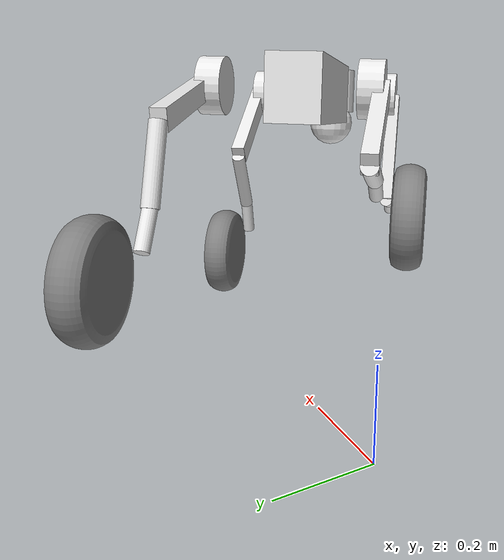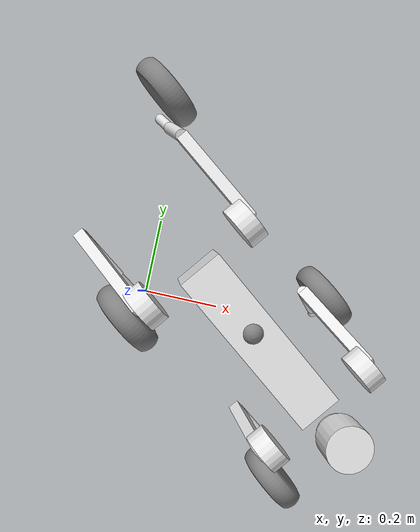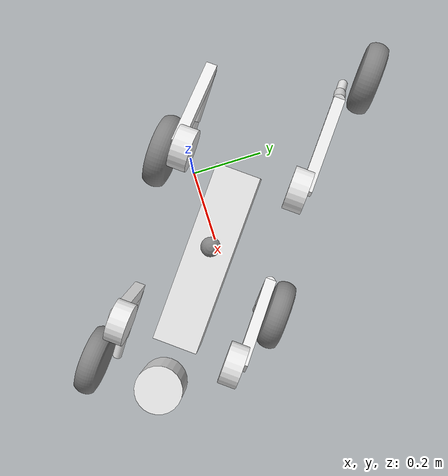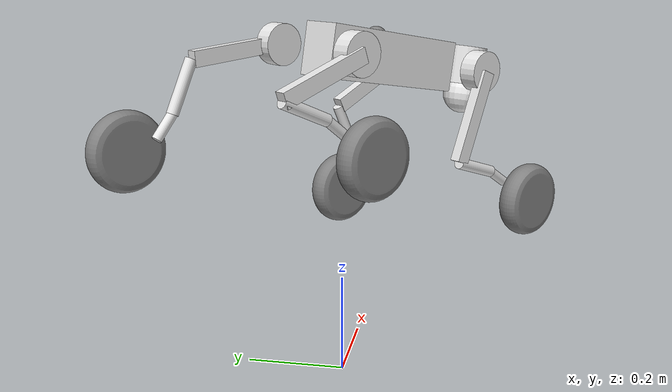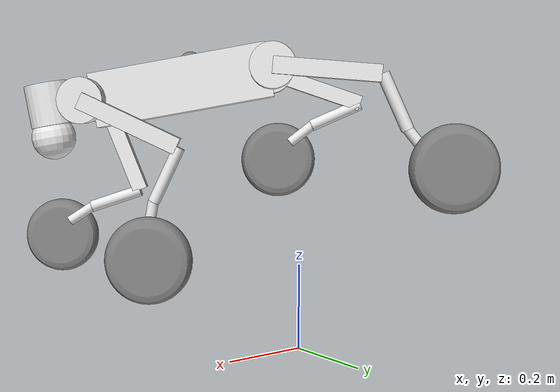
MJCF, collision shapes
<mujoco>
  <compiler angle="radian" assetdir="assets"/>
  <option timestep="0.02">
    <flag/>
  </option>
  <statistic/>
  <asset>
    <texture type="2d" colorspace="linear" name="noise_normal" file="noise_normal.png"/>
    <material name="black_plastic" rgba="0.0507087 0.0507087 0.0507087 1.0" reflectance="0.5" roughness="0.4" metallic="0.0" texuniform="true" texrepeat="12.0 12.0">
      <layer texture="noise_normal" role="normal"/>
    </material>
    <material name="black_metal" rgba="0.220085 0.220813 0.2209164 1.0" reflectance="0.5" roughness="0.5" metallic="1.0" texuniform="true" texrepeat="16.0 16.0">
      <layer texture="noise_normal" role="normal"/>
    </material>
    <material name="aluminum_rough" rgba="0.9621279 0.9653596 0.9658199 1.0" reflectance="0.5" roughness="0.54" metallic="1.0" texuniform="true" texrepeat="12.0 12.0">
      <layer texture="noise_normal" role="normal"/>
    </material>
    <material name="gray_plastic" rgba="0.5969514 0.5983734 0.6262097 1.0" reflectance="0.5" roughness="0.4" metallic="0.0"/>
    <material name="black_rubber" rgba="0.0507087 0.0507087 0.0507087 1.0" reflectance="0.5" roughness="0.7" metallic="0.0" texuniform="true" texrepeat="16.0 16.0">
      <layer texture="noise_normal" role="normal"/>
    </material>
    <material name="template" rgba="0.9063318 0.9063318 0.9063318 1.0" reflectance="0.5" roughness="0.5" metallic="0.0"/>
    <mesh name="base_0" file="base_0.obj"/>
    <mesh name="base_1" file="base_1.obj"/>
    <mesh name="base_2" file="base_2.obj"/>
    <mesh name="base_3" file="base_3.obj"/>
    <mesh name="base_4" file="base_4.obj"/>
    <mesh name="hip_0" file="hip_0.obj"/>
    <mesh name="hip_1" file="hip_1.obj"/>
    <mesh name="thigh_0" file="thigh_0.obj"/>
    <mesh name="thigh_1" file="thigh_1.obj"/>
    <mesh name="thigh_mirror_0" file="thigh_mirror_0.obj"/>
    <mesh name="thigh_mirror_1" file="thigh_mirror_1.obj"/>
    <mesh name="wheel" file="wheel.obj"/>
    <mesh name="calf" file="calf.obj"/>
    <mesh name="calf_mirror" file="calf_mirror.obj"/>
    <mesh name="wheel_001" file="wheel_001.obj"/>
    <mesh name="wheel_convex" file="wheel_convex.stl"/>
  </asset>
  <worldbody>
    <body name="base" pos="0.2998938 -0.0344606 0.6118738" quat="0.9419456 0.0269808 0.0834898 -0.3240989">
      <inertial pos="0.021112 0.0 -0.005366" quat="0.000544 -0.7134351 0.0017372 -0.700719" mass="6.921" diaginertia="0.107027 0.0980771 0.0244531"/>
      <joint name="JNT_Joint" pos="0.0 0.0 0.0" axis="-0.0 1.0 1e-07" type="free" armature="0.01" damping="0.5" frictionloss="0.2"/>
      <geom name="base1" pos="0.0 0.0 0.0" quat="1.0 -0.0 0.0 -0.0" type="box" size="0.1881 0.04675 0.057" material="template" group="3" condim="1" conaffinity="2" friction="0.6 0.005 0.0001" margin="0.001"/>
      <geom name="base2" pos="0.285 0.0 0.01" quat="1.0 -0.0 0.0 -0.0" type="cylinder" size="0.05 0.045" material="template" group="3" condim="1" conaffinity="2" friction="0.6 0.005 0.0001" margin="0.001"/>
      <geom name="base3" pos="0.293 0.0 -0.06" quat="1.0 -0.0 0.0 -0.0" type="sphere" size="0.047" material="template" group="3" condim="1" conaffinity="2" friction="0.6 0.005 0.0001" margin="0.001"/>
      <geom name="base_0" pos="0.0 0.0 0.0" quat="1.0 0.0 0.0 -0.0" type="mesh" mesh="base_0" material="black_plastic" group="2" condim="1" contype="0" conaffinity="0" friction="0.6 0.005 0.0001" margin="0.001"/>
      <geom name="base_1" pos="0.0 0.0 0.0" quat="1.0 0.0 0.0 -0.0" type="mesh" mesh="base_1" material="black_metal" group="2" condim="1" contype="0" conaffinity="0" friction="0.6 0.005 0.0001" margin="0.001"/>
      <geom name="base_2" pos="0.0 0.0 0.0" quat="1.0 0.0 0.0 -0.0" type="mesh" mesh="base_2" material="black_plastic" group="2" condim="1" contype="0" conaffinity="0" friction="0.6 0.005 0.0001" margin="0.001"/>
      <geom name="base_3" pos="0.0 0.0 0.0" quat="1.0 0.0 0.0 -0.0" type="mesh" mesh="base_3" material="aluminum_rough" group="2" condim="1" contype="0" conaffinity="0" friction="0.6 0.005 0.0001" margin="0.001"/>
      <geom name="base_4" pos="0.0 0.0 0.0" quat="1.0 0.0 0.0 -0.0" type="mesh" mesh="base_4" material="gray_plastic" group="2" condim="1" contype="0" conaffinity="0" friction="0.6 0.005 0.0001" margin="0.001"/>
      <site name="imu" pos="-0.02557 0.0 0.04232" quat="1.0 -0.0 0.0 -0.0" type="sphere" size="0.025"/>
      <body name="FL_hip" pos="0.1934001 0.0465 -1e-07" quat="0.9999973 -0.0023455 0.0 -0.0">
        <inertial pos="-0.0054 0.00194 -0.000105" quat="0.4970138 0.4992449 0.505462 0.498237" mass="0.678" diaginertia="0.000884 0.000596 0.00048"/>
        <joint name="FL_hip_joint" pos="0.0 0.0 0.0" axis="1.0 -2e-07 -1e-07" type="hinge" range="-1.0472 1.0472" armature="0.01" damping="0.5" frictionloss="0.2"/>
        <geom name="FL_hip_geom" pos="0.0 0.08 0.0" quat="0.7071068 0.7071068 0.0 -0.0" type="cylinder" size="0.046 0.02" material="template" group="3" condim="1" conaffinity="2" friction="0.6 0.005 0.0001" margin="0.001"/>
        <geom name="hip_0" pos="0.0 -0.0 0.0" quat="1.0 0.0 0.0 -0.0" type="mesh" mesh="hip_0" material="aluminum_rough" group="2" condim="1" contype="0" conaffinity="0" friction="0.6 0.005 0.0001" margin="0.001"/>
        <geom name="hip_1" pos="0.0 -0.0 0.0" quat="1.0 0.0 0.0 -0.0" type="mesh" mesh="hip_1" material="gray_plastic" group="2" condim="1" contype="0" conaffinity="0" friction="0.6 0.005 0.0001" margin="0.001"/>
        <body name="FL_thigh" pos="0.0 0.0954999 -2e-07" quat="0.8880953 0.0 0.4596595 0.0">
          <inertial pos="-0.00374 -0.0223 -0.0327" quat="0.8295329 0.0847635 -0.0200632 0.5516229" mass="1.152" diaginertia="0.0059497 0.0058415 0.0008788"/>
          <joint name="FL_thigh_joint" pos="0.0 0.0 0.0" axis="0.0 1.0 0.0" type="hinge" range="-1.5707999 3.4907" armature="0.01" damping="0.5" frictionloss="0.2"/>
          <geom name="FL_thigh_geom" pos="0.0 0.0 -0.1065" quat="0.7071068 -0.0 0.7071068 0.0" type="box" size="0.1065 0.01225 0.017" material="template" group="3" condim="1" conaffinity="2" friction="0.6 0.005 0.0001" margin="0.001"/>
          <geom name="thigh_0" pos="0.0 -1e-07 1e-07" quat="1.0 -0.0 0.0 -0.0" type="mesh" mesh="thigh_0" material="aluminum_rough" group="2" condim="1" contype="0" conaffinity="0" friction="0.6 0.005 0.0001" margin="0.001"/>
          <geom name="thigh_1" pos="0.0 -1e-07 1e-07" quat="1.0 -0.0 0.0 -0.0" type="mesh" mesh="thigh_1" material="gray_plastic" group="2" condim="1" contype="0" conaffinity="0" friction="0.6 0.005 0.0001" margin="0.001"/>
          <body name="FL_calf" pos="1e-07 1e-07 -0.213" quat="0.776633 0.0 -0.6299533 0.0">
            <inertial pos="0.006296 -0.0006221 -0.141417" quat="0.7106717 0.001541 -0.0045009 0.7035077" mass="0.241352" diaginertia="0.0014901 0.0014636 5.31e-05"/>
            <joint name="FL_calf_joint" pos="0.0 0.0 0.0" axis="0.0 1.0 1e-07" type="hinge" range="-2.7227001 -0.83776" armature="0.01" damping="0.1" frictionloss="0.2"/>
            <geom name="calf" pos="0.0 0.0 0.0" quat="1.0 -0.0 0.0 0.0" type="mesh" mesh="calf" material="aluminum_rough" group="2" condim="1" contype="0" conaffinity="0" friction="0.4 0.005 0.0001" margin="0.001"/>
            <geom name="GEO_Cylinder_002" pos="0.008 0.0 -0.06" quat="0.9944927 -0.0 -0.104807 -0.0" type="cylinder" size="0.012 0.06" material="template" group="3" condim="1" friction="0.4 0.005 0.0001" margin="0.001"/>
            <geom name="GEO_Cylinder_003" pos="0.02 0.0 -0.148" quat="0.9996875 -0.0 0.0249974 -0.0" type="cylinder" size="0.011 0.0325" material="template" group="3" condim="1" friction="0.4 0.005 0.0001" margin="0.001"/>
            <body name="FL_wheel_link" pos="0.0 0.0 -0.2264" quat="1.0 -0.0 0.0 0.0">
              <inertial pos="-0.0 0.04 -0.0" quat="0.6614189 0.248219 0.250051 0.6621079" mass="0.98" diaginertia="0.003 0.0016 0.0016"/>
              <joint name="FL_wheel_joint" pos="0.0 0.0 0.0" axis="0.0 1.0 1e-07" type="hinge" armature="0.01" damping="0.1" frictionloss="0.2"/>
              <geom name="wheel" pos="1e-07 1e-07 0.0" quat="1e-07 -1.0 0.0 -0.0" type="mesh" mesh="wheel" material="black_rubber" group="2" condim="1" contype="0" conaffinity="0" friction="0.4 0.005 0.0001" margin="0.001"/>
              <geom name="wheel_hub" pos="0.0 0.0 0.0" quat="0.0 -1.0 0.0 0.0" type="mesh" mesh="wheel_001" material="aluminum_rough" group="2" condim="1" contype="0" conaffinity="0" friction="0.4 0.005 0.0001" margin="0.001"/>
              <geom name="wheel_convex" pos="0.0 0.0 0.0" quat="0.0 -1.0 0.0 0.0" type="mesh" mesh="wheel_convex" group="3" condim="6" priority="1" friction="0.8 0.02 0.01" margin="0.001"/>
            </body>
          </body>
        </body>
      </body>
      <body name="FR_hip" pos="0.1934001 -0.0465 -0.0" quat="0.9999793 0.0064387 0.0 -0.0">
        <inertial pos="-0.0054 -0.00194 -0.000105" quat="0.4982368 0.5054619 0.4992449 0.4970139" mass="0.678" diaginertia="0.000884 0.000596 0.00048"/>
        <joint name="FR_hip_joint" pos="0.0 0.0 0.0" axis="1.0 -1e-07 -1e-07" type="hinge" range="-1.0472 1.0472" armature="0.01" damping="0.5" frictionloss="0.2"/>
        <geom name="FR_hip_geom" pos="0.0 -0.08 0.0" quat="0.7071066 0.7071069 -0.0 0.0" type="cylinder" size="0.046 0.02" material="template" group="3" condim="1" conaffinity="2" friction="0.6 0.005 0.0001" margin="0.001"/>
        <geom name="hip_0_001" pos="0.0 0.0 0.0" quat="4.63e-05 1.0 -0.0 0.0" type="mesh" mesh="hip_0" material="aluminum_rough" group="2" condim="1" contype="0" conaffinity="0" friction="0.6 0.005 0.0001" margin="0.001"/>
        <geom name="hip_1_001" pos="0.0 0.0 0.0" quat="4.63e-05 1.0 -0.0 0.0" type="mesh" mesh="hip_1" material="gray_plastic" group="2" condim="1" contype="0" conaffinity="0" friction="0.6 0.005 0.0001" margin="0.001"/>
        <body name="FR_thigh" pos="0.0 -0.0955001 3e-07" quat="0.9950206 0.0 0.0996701 -0.0">
          <inertial pos="-0.00374 0.0223 -0.0327" quat="0.551623 -0.0200632 0.0847635 0.8295329" mass="1.152" diaginertia="0.0059497 0.0058415 0.0008788"/>
          <joint name="FR_thigh_joint" pos="0.0 0.0 0.0" axis="-0.0 1.0 1e-07" type="hinge" range="-1.5707999 3.4907" armature="0.01" damping="0.5" frictionloss="0.2"/>
          <geom name="FR_thigh_geom" pos="0.0 0.0 -0.1065" quat="0.7071068 0.0 0.7071068 0.0" type="box" size="0.1065 0.01225 0.017" material="template" group="3" condim="1" conaffinity="2" friction="0.6 0.005 0.0001" margin="0.001"/>
          <geom name="thigh_mirror_0" pos="1e-07 -0.0 3e-07" quat="1.0 0.0 0.0 0.0" type="mesh" mesh="thigh_mirror_0" material="aluminum_rough" group="2" condim="1" contype="0" conaffinity="0" friction="0.6 0.005 0.0001" margin="0.001"/>
          <geom name="thigh_mirror_1" pos="1e-07 -0.0 3e-07" quat="1.0 0.0 0.0 0.0" type="mesh" mesh="thigh_mirror_1" material="gray_plastic" group="2" condim="1" contype="0" conaffinity="0" friction="0.6 0.005 0.0001" margin="0.001"/>
          <body name="FR_calf" pos="-1e-07 -1e-07 -0.2129999" quat="0.756881 0.0 -0.6535527 0.0">
            <inertial pos="0.006296 0.0006221 -0.141417" quat="0.7035078 -0.0045009 0.001541 0.7106717" mass="0.241352" diaginertia="0.0014901 0.0014636 5.31e-05"/>
            <joint name="FR_calf_joint" pos="0.0 0.0 0.0" axis="-0.0 1.0 1e-07" type="hinge" range="-2.7227001 -0.83776" armature="0.01" damping="0.1" frictionloss="0.2"/>
            <geom name="calf_mirror" pos="0.0 0.0 0.0" quat="1.0 -0.0 -0.0 -0.0" type="mesh" mesh="calf_mirror" material="aluminum_rough" group="2" condim="1" contype="0" conaffinity="0" friction="0.4 0.005 0.0001" margin="0.001"/>
            <geom name="GEO_Cylinder_005" pos="0.01 0.0 -0.06" quat="0.9950042 0.0 -0.0998334 -0.0" type="cylinder" size="0.013 0.06" material="template" group="3" condim="1" friction="0.4 0.005 0.0001" margin="0.001"/>
            <geom name="GEO_Cylinder_006" pos="0.02 0.0 -0.148" quat="0.9996875 -0.0 0.0249974 -0.0" type="cylinder" size="0.011 0.0325" material="template" group="3" condim="1" friction="0.4 0.005 0.0001" margin="0.001"/>
            <body name="FR_wheel_link" pos="0.0 0.0 -0.2264" quat="1.0 -0.0 -0.0 -0.0">
              <inertial pos="-0.0 -0.04 -0.0" quat="0.6614189 0.248219 0.250051 0.6621079" mass="0.98" diaginertia="0.003 0.0016 0.0016"/>
              <joint name="FR_wheel_joint" pos="0.0 0.0 0.0" axis="-0.0 1.0 1e-07" type="hinge" armature="0.01" damping="0.1" frictionloss="0.2"/>
              <geom name="wheel_001" pos="0.0 0.0 0.0" quat="1.0 -0.0 -0.0 -0.0" type="mesh" mesh="wheel" material="black_rubber" group="2" condim="1" contype="0" conaffinity="0" friction="0.4 0.005 0.0001" margin="0.001"/>
              <geom name="wheel_hub_001" pos="0.0 0.0 0.0" quat="1.0 -0.0 -0.0 -0.0" type="mesh" mesh="wheel_001" material="aluminum_rough" group="2" condim="1" contype="0" conaffinity="0" friction="0.4 0.005 0.0001" margin="0.001"/>
              <geom name="wheel_convex_001" pos="-1e-07 -0.0 -1e-07" quat="1.0 -0.0 -0.0 0.0" type="mesh" mesh="wheel_convex" group="3" condim="6" priority="1" friction="0.8 0.02 0.01" margin="0.001"/>
            </body>
          </body>
        </body>
      </body>
      <body name="RL_hip" pos="-0.1934001 0.0465 -2e-07" quat="0.9999968 0.0025262 0.0 -1e-07">
        <inertial pos="0.0054 0.00194 -0.000105" quat="0.5054619 0.4982368 0.4970139 0.4992448" mass="0.678" diaginertia="0.000884 0.000596 0.00048"/>
        <joint name="RL_hip_joint" pos="0.0 0.0 0.0" axis="1.0 -1e-07 -1e-07" type="hinge" range="-1.0472 1.0472" armature="0.01" damping="0.5" frictionloss="0.2"/>
        <geom name="hip_0_002" pos="0.0 0.0 0.0" quat="4.63e-05 -0.0 1.0 -0.0" type="mesh" mesh="hip_0" material="aluminum_rough" group="2" condim="1" contype="0" conaffinity="0" friction="0.6 0.005 0.0001" margin="0.001"/>
        <geom name="hip_1_002" pos="0.0 0.0 0.0" quat="4.63e-05 -0.0 1.0 -0.0" type="mesh" mesh="hip_1" material="gray_plastic" group="2" condim="1" contype="0" conaffinity="0" friction="0.6 0.005 0.0001" margin="0.001"/>
        <geom name="RL_hip_geom" pos="0.0 0.08 0.0" quat="0.7071066 0.7071069 0.0 0.0" type="cylinder" size="0.046 0.02" material="template" group="3" condim="1" conaffinity="2" friction="0.6 0.005 0.0001" margin="0.001"/>
        <body name="RL_thigh" pos="-0.0 0.0955 2e-07" quat="0.7915581 -1e-07 0.6110939 0.0">
          <inertial pos="-0.00374 -0.0223 -0.0327" quat="0.8295329 0.0847635 -0.0200632 0.551623" mass="1.152" diaginertia="0.0059497 0.0058415 0.0008788"/>
          <joint name="RL_thigh_joint" pos="0.0 0.0 0.0" axis="-0.0 1.0 1e-07" type="hinge" range="-0.5236 4.5379" armature="0.01" damping="0.5" frictionloss="0.2"/>
          <geom name="RL_thigh_geom" pos="0.0 0.0 -0.1065" quat="0.7071068 0.0 0.7071068 -0.0" type="box" size="0.1065 0.01225 0.017" material="template" group="3" condim="1" conaffinity="2" friction="0.6 0.005 0.0001" margin="0.001"/>
          <geom name="thigh_0_001" pos="0.0 0.0 0.0" quat="1.0 0.0 0.0 0.0" type="mesh" mesh="thigh_0" material="aluminum_rough" group="2" condim="1" contype="0" conaffinity="0" friction="0.6 0.005 0.0001" margin="0.001"/>
          <geom name="thigh_1_001" pos="0.0 0.0 0.0" quat="1.0 0.0 0.0 0.0" type="mesh" mesh="thigh_1" material="gray_plastic" group="2" condim="1" contype="0" conaffinity="0" friction="0.6 0.005 0.0001" margin="0.001"/>
          <body name="RL_calf" pos="2e-07 -1e-07 -0.213" quat="0.9089683 0.0 -0.4168651 0.0">
            <inertial pos="0.006296 -0.0006221 -0.141417" quat="0.7106718 0.001541 -0.0045009 0.7035077" mass="0.241352" diaginertia="0.0014901 0.0014636 5.31e-05"/>
            <joint name="RL_calf_joint" pos="0.0 0.0 0.0" axis="0.0 1.0 1e-07" type="hinge" range="-2.7227001 -0.83776" armature="0.01" damping="0.1" frictionloss="0.2"/>
            <geom name="calf_001" pos="-1e-07 1e-07 0.0" quat="1.0 0.0 -1e-07 -0.0" type="mesh" mesh="calf" material="aluminum_rough" group="2" condim="1" contype="0" conaffinity="0" friction="0.4 0.005 0.0001" margin="0.001"/>
            <geom name="GEO_Cylinder_008" pos="0.01 0.0 -0.06" quat="0.9950042 -0.0 -0.0998334 -0.0" type="cylinder" size="0.013 0.06" material="template" group="3" condim="1" friction="0.4 0.005 0.0001" margin="0.001"/>
            <geom name="GEO_Cylinder_009" pos="0.02 0.0 -0.148" quat="0.9996875 0.0 0.0249973 -0.0" type="cylinder" size="0.011 0.0325" material="template" group="3" condim="1" friction="0.4 0.005 0.0001" margin="0.001"/>
            <body name="RL_wheel_link" pos="0.0 0.0 -0.2264" quat="1.0 0.0 -0.0 -0.0">
              <inertial pos="-0.0 0.04 -0.0" quat="0.6614189 0.2482189 0.2500509 0.6621079" mass="0.98" diaginertia="0.003 0.0016 0.0016"/>
              <joint name="RL_wheel_joint" pos="0.0 0.0 0.0" axis="0.0 1.0 1e-07" type="hinge" armature="0.01" damping="0.1" frictionloss="0.2"/>
              <geom name="wheel_002" pos="0.0 0.0 0.0" quat="1e-07 -1.0 0.0 -0.0" type="mesh" mesh="wheel" material="black_rubber" group="2" condim="1" contype="0" conaffinity="0" friction="0.4 0.005 0.0001" margin="0.001"/>
              <geom name="wheel_hub_002" pos="0.0 0.0 0.0" quat="1e-07 -1.0 0.0 -0.0" type="mesh" mesh="wheel_001" material="aluminum_rough" group="2" condim="1" contype="0" conaffinity="0" friction="0.4 0.005 0.0001" margin="0.001"/>
              <geom name="wheel_convex_002" pos="0.0 0.0 0.0" quat="1e-07 -1.0 0.0 -0.0" type="mesh" mesh="wheel_convex" group="3" condim="6" priority="1" friction="0.8 0.02 0.01" margin="0.001"/>
            </body>
          </body>
        </body>
      </body>
      <body name="RR_hip" pos="-0.1933999 -0.0464999 -0.0" quat="0.9999985 0.0017485 0.0 0.0">
        <inertial pos="0.0054 -0.00194 -0.000105" quat="0.4992447 0.4970138 0.498237 0.5054619" mass="0.678" diaginertia="0.000884 0.000596 0.00048"/>
        <joint name="RR_hip_joint" pos="0.0 0.0 0.0" axis="1.0 -1e-07 -1e-07" type="hinge" range="-1.0472 1.0472" armature="0.01" damping="0.5" frictionloss="0.2"/>
        <geom name="hip_0_003" pos="0.0 0.0 0.0" quat="0.0 4.63e-05 4.63e-05 -1.0" type="mesh" mesh="hip_0" material="aluminum_rough" group="2" condim="1" contype="0" conaffinity="0" friction="0.6 0.005 0.0001" margin="0.001"/>
        <geom name="hip_1_003" pos="0.0 0.0 0.0" quat="0.0 4.63e-05 4.63e-05 -1.0" type="mesh" mesh="hip_1" material="gray_plastic" group="2" condim="1" contype="0" conaffinity="0" friction="0.6 0.005 0.0001" margin="0.001"/>
        <geom name="RR_hip_geom" pos="0.0 -0.08 0.0" quat="0.7071066 0.7071069 0.0 0.0" type="cylinder" size="0.046 0.02" material="template" group="3" condim="1" conaffinity="2" friction="0.6 0.005 0.0001" margin="0.001"/>
        <body name="RR_thigh" pos="-0.0 -0.0955 0.0" quat="0.8615213 -0.0 0.5077214 0.0">
          <inertial pos="-0.00374 0.0223 -0.0327" quat="0.5516229 -0.0200632 0.0847635 0.8295329" mass="1.152" diaginertia="0.0059497 0.0058415 0.0008788"/>
          <joint name="RR_thigh_joint" pos="0.0 0.0 0.0" axis="-0.0 1.0 0.0" type="hinge" range="-0.5236 4.5379" armature="0.01" damping="0.5" frictionloss="0.2"/>
          <geom name="RR_thigh_geom" pos="0.0 0.0 -0.1065" quat="0.7071068 0.0 0.7071068 0.0" type="box" size="0.1065 0.01225 0.017" material="template" group="3" condim="1" conaffinity="2" friction="0.6 0.005 0.0001" margin="0.001"/>
          <geom name="thigh_mirror_0_001" pos="0.0 0.0 0.0" quat="1.0 0.0 0.0 -0.0" type="mesh" mesh="thigh_mirror_0" material="aluminum_rough" group="2" condim="1" contype="0" conaffinity="0" friction="0.6 0.005 0.0001" margin="0.001"/>
          <geom name="thigh_mirror_1_001" pos="0.0 0.0 0.0" quat="1.0 0.0 0.0 -0.0" type="mesh" mesh="thigh_mirror_1" material="gray_plastic" group="2" condim="1" contype="0" conaffinity="0" friction="0.6 0.005 0.0001" margin="0.001"/>
          <body name="RR_calf" pos="1e-07 -1e-07 -0.2130001" quat="0.4549958 0.0 -0.8904936 -0.0">
            <inertial pos="0.006296 0.0006221 -0.141417" quat="0.7035078 -0.0045009 0.001541 0.7106717" mass="0.241352" diaginertia="0.0014901 0.0014636 5.31e-05"/>
            <joint name="RR_calf_joint" pos="0.0 0.0 0.0" axis="-0.0 1.0 1e-07" type="hinge" range="-2.7227001 -0.83776" armature="0.01" damping="0.1" frictionloss="0.2"/>
            <geom name="calf_mirror_001" pos="-2e-07 0.0 0.0" quat="1.0 -0.0 -0.0 -0.0" type="mesh" mesh="calf_mirror" material="aluminum_rough" group="2" condim="1" contype="0" conaffinity="0" friction="0.4 0.005 0.0001" margin="0.001"/>
            <geom name="GEO_Cylinder_011" pos="0.01 0.0 -0.06" quat="0.9950042 -0.0 -0.0998334 -0.0" type="cylinder" size="0.013 0.06" material="template" group="3" condim="1" friction="0.4 0.005 0.0001" margin="0.001"/>
            <geom name="GEO_Cylinder_012" pos="0.02 0.0 -0.148" quat="0.9996875 0.0 0.0249974 -0.0" type="cylinder" size="0.011 0.0325" material="template" group="3" condim="1" friction="0.4 0.005 0.0001" margin="0.001"/>
            <body name="RR_wheel_link" pos="0.0 0.0 -0.2264" quat="1.0 0.0 0.0 -0.0">
              <inertial pos="-0.0 -0.04 -0.0" quat="0.6614188 0.248219 0.250051 0.662108" mass="0.98" diaginertia="0.003 0.0016 0.0016"/>
              <joint name="RR_wheel_joint" pos="0.0 0.0 0.0" axis="-0.0 1.0 1e-07" type="hinge" armature="0.01" damping="0.1" frictionloss="0.2"/>
              <geom name="wheel_003" pos="0.0 0.0 0.0" quat="1.0 0.0 0.0 -0.0" type="mesh" mesh="wheel" material="black_rubber" group="2" condim="1" contype="0" conaffinity="0" friction="0.4 0.005 0.0001" margin="0.001"/>
              <geom name="wheel_hub_003" pos="-1e-07 -0.0 1e-07" quat="1.0 -0.0 -0.0 -0.0" type="mesh" mesh="wheel_001" material="aluminum_rough" group="2" condim="1" contype="0" conaffinity="0" friction="0.4 0.005 0.0001" margin="0.001"/>
              <geom name="wheel_convex_003" pos="0.0 0.0 0.0" quat="1.0 0.0 0.0 -0.0" type="mesh" mesh="wheel_convex" group="3" condim="6" priority="1" friction="0.8 0.02 0.01" margin="0.001"/>
            </body>
          </body>
        </body>
      </body>
    </body>
  </worldbody>
  <actuator>
    <position name="FR_hip_001" joint="FR_hip_joint" forcerange="-23.7000008 23.7000008" kp="35.0"/>
    <position name="FR_thigh_001" joint="FR_thigh_joint" forcerange="-23.7000008 23.7000008" kp="35.0"/>
    <position name="FL_hip_001" joint="FL_hip_joint" forcerange="-23.7000008 23.7000008" kp="35.0"/>
    <position name="FL_thigh_001" joint="FL_thigh_joint" forcerange="-23.7000008 23.7000008" kp="35.0"/>
    <position name="RR_hip_001" joint="RR_hip_joint" forcerange="-23.7000008 23.7000008" kp="35.0"/>
    <position name="RR_thigh_001" joint="RR_thigh_joint" forcerange="-23.7000008 23.7000008" kp="35.0"/>
    <position name="RL_hip_001" joint="RL_hip_joint" forcerange="-23.7000008 23.7000008" kp="35.0"/>
    <position name="RL_thigh_001" joint="RL_thigh_joint" forcerange="-23.7000008 23.7000008" kp="35.0"/>
    <motor name="RL_calf_001" joint="RL_calf_joint" ctrlrange="-45.4300003 45.4300003"/>
    <motor name="RR_calf_001" joint="RR_calf_joint" ctrlrange="-45.4300003 45.4300003"/>
    <motor name="RR_wheel" joint="RR_wheel_joint" ctrlrange="-15.0 15.0"/>
    <motor name="FL_wheel" joint="FL_wheel_joint" ctrlrange="-15.0 15.0"/>
    <motor name="FR_wheel" joint="FR_wheel_joint" ctrlrange="-15.0 15.0"/>
    <motor name="FL_calf_001" joint="FL_calf_joint" ctrlrange="-45.4300003 45.4300003"/>
    <motor name="FR_calf_001" joint="FR_calf_joint" ctrlrange="-45.4300003 45.4300003"/>
    <motor name="RL_wheel" joint="RL_wheel_joint" ctrlrange="-15.0 15.0"/>
  </actuator>
  <sensor>
    <accelerometer name="local_linvel" site="imu"/>
    <framexaxis name="upvector" objtype="site" objname="imu"/>
    <velocimeter name="global_position" site="imu"/>
    <frameyaxis name="global_linvel" objtype="site" objname="imu"/>
    <jointpos name="RL_calf_pos" joint="RL_calf_joint"/>
    <jointvel name="RL_wheel_vel" joint="RL_wheel_joint"/>
    <jointpos name="RR_wheel_pos" joint="RR_wheel_joint"/>
    <jointpos name="FR_calf_pos" joint="FR_calf_joint"/>
    <jointpos name="RR_calf_pos" joint="RR_calf_joint"/>
    <jointpos name="FL_wheel_pos" joint="FL_wheel_joint"/>
    <jointvel name="RL_calf_vel" joint="RL_calf_joint"/>
    <jointvel name="FL_calf_vel" joint="FL_calf_joint"/>
    <jointpos name="FR_wheel_pos" joint="FR_wheel_joint"/>
    <jointpos name="FL_calf_pos" joint="FL_calf_joint"/>
    <jointvel name="RR_calf_vel" joint="RR_calf_joint"/>
    <jointvel name="FR_wheel_vel" joint="FR_wheel_joint"/>
    <jointpos name="RL_wheel_pos" joint="RL_wheel_joint"/>
    <jointvel name="RR_wheel_vel" joint="RR_wheel_joint"/>
    <jointvel name="FR_calf_vel" joint="FR_calf_joint"/>
    <jointvel name="FL_wheel_vel" joint="FL_wheel_joint"/>
  </sensor>
</mujoco>
